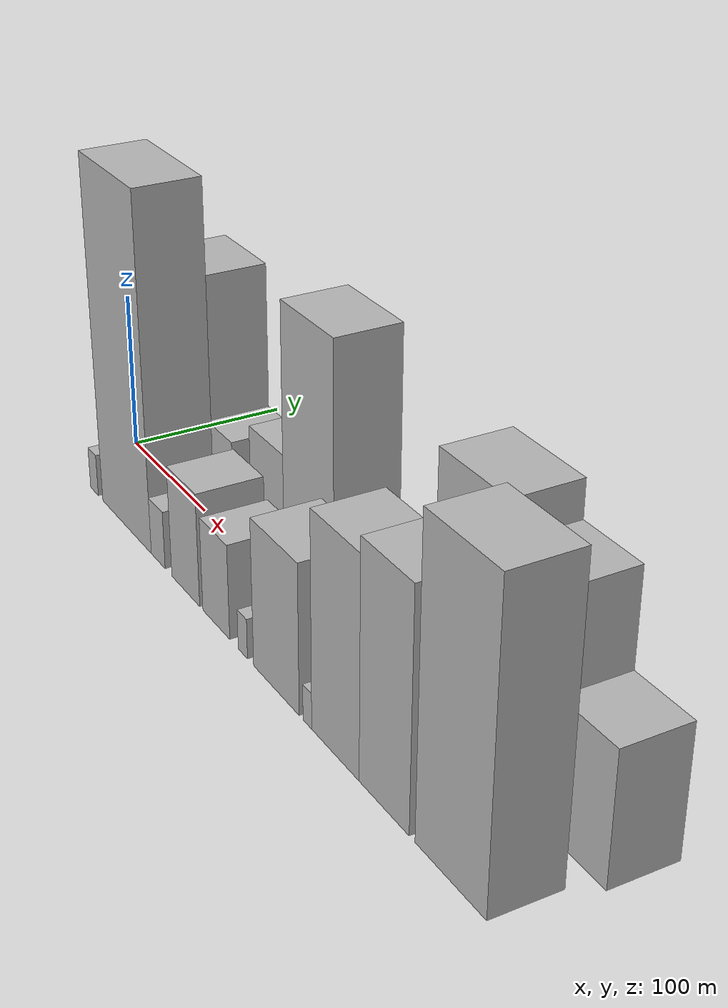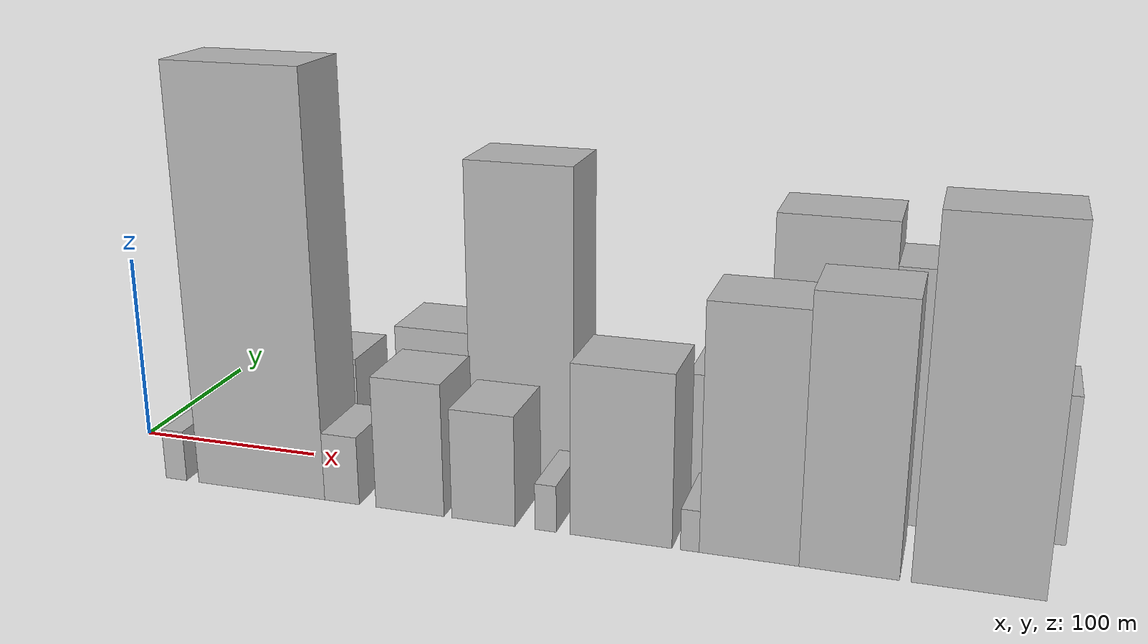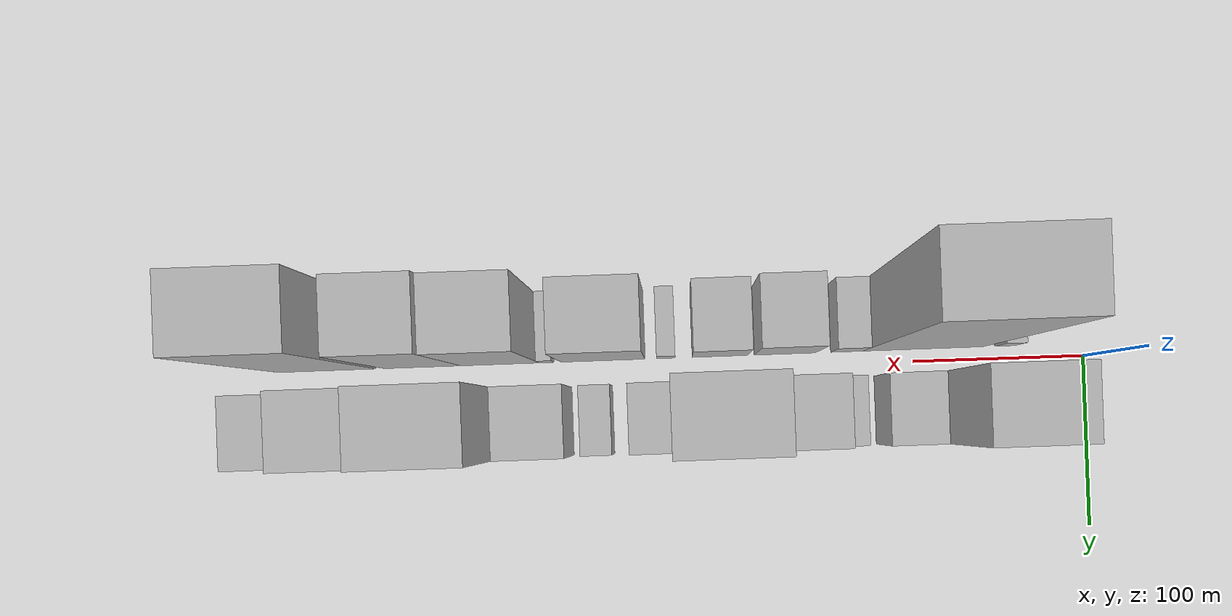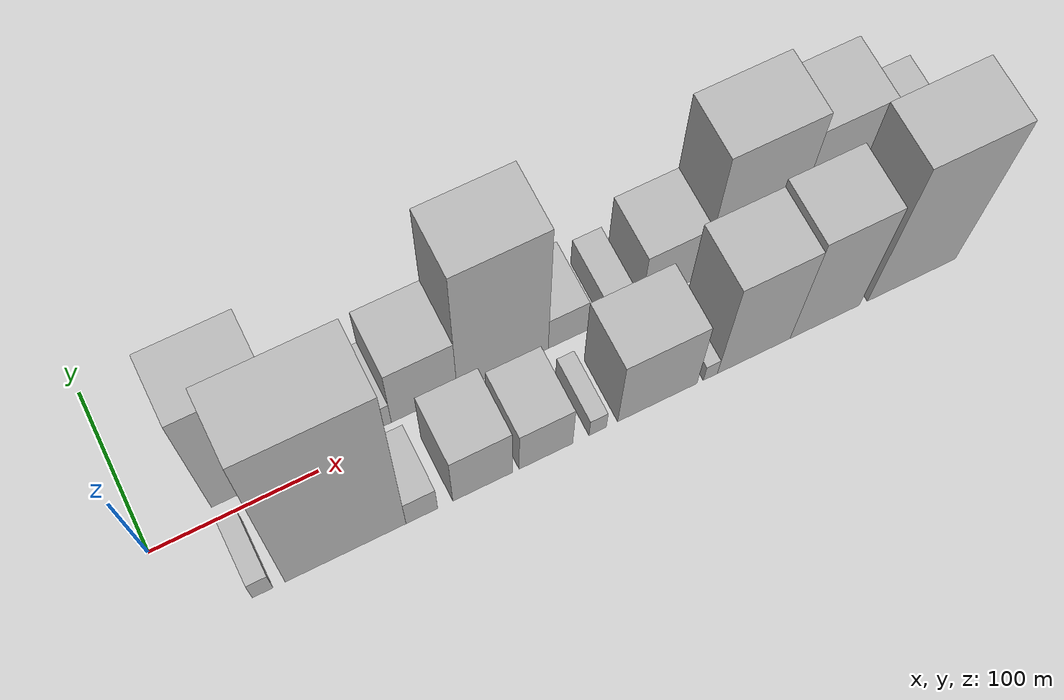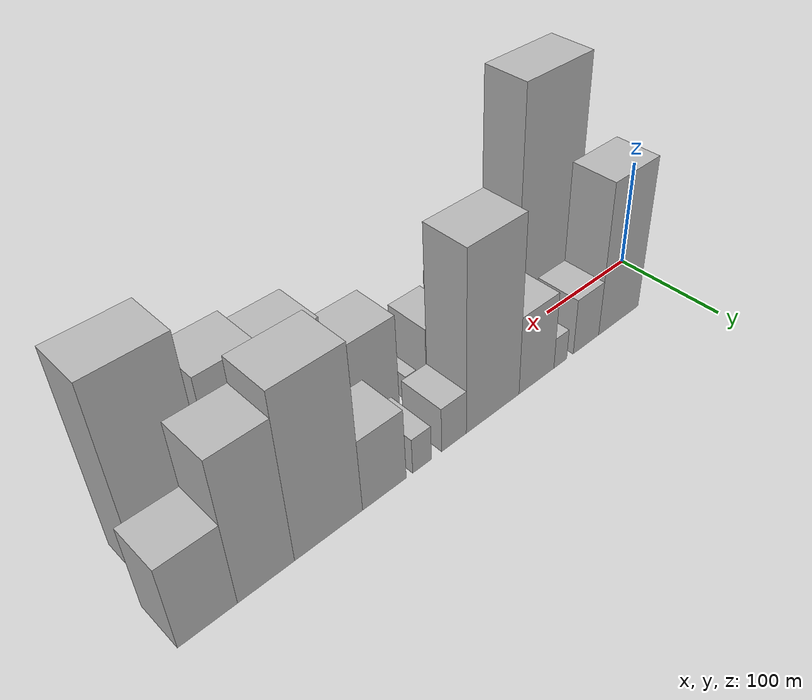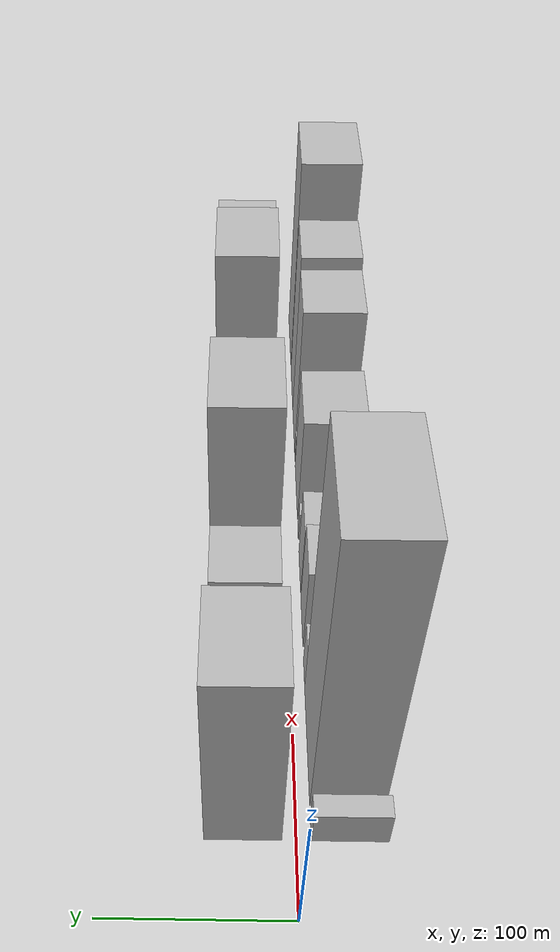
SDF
<sdf version="1.6">
 <world name="default">
  <scene>
   <sky><clouds><speed>12</speed></clouds></sky>
   <ambient>0.4 0.4 0.4 1</ambient>
   <background>0.7 0.7 0.7 1</background>
   <shadows>1</shadows>
  </scene>
  <gravity>0 0 -9.8066</gravity>
  <magnetic_field>6e-06 2.3e-05 -4.2e-05</magnetic_field>
  <physics default="0" name="default_physics" type="ode">
   <ode>
    <solver>
     <type>quick</type>
     <iters>10</iters>
     <sor>1.0</sor>
     <use_dynamic_moi_rescaling>0</use_dynamic_moi_rescaling>
    </solver>
    <constraints>
     <cfm>0</cfm>
     <erp>0.2</erp>
     <contact_max_correcting_vel>100</contact_max_correcting_vel>
     <contact_surface_layer>0.001</contact_surface_layer>
    </constraints>
   </ode>
   <max_step_size>0.004</max_step_size>
   <real_time_factor>1</real_time_factor>
   <real_time_update_rate>250</real_time_update_rate>
  </physics>
  <light name="sun" type="directional">
   <pose>0 0 10 0 0 0</pose>
   <diffuse>0.8 0.8 0.8 1</diffuse>
   <specular>0.2 0.2 0.2 1</specular>
   <attenuation>
    <range>1000</range>
    <constant>0.9</constant>
    <linear>0.01</linear>
    <quadratic>0.001</quadratic>
   </attenuation>
   <direction>-0.5 0.1 -0.9</direction>
  </light>
  <model name="building_1">
   <static>1</static>
   <pose>66.0236 27.5000 0 0.000000 0.000000 1.570796</pose>
   <link name="link">
    <pose>0 0 72.00 0 0 0</pose>
    <collision name="collision"><geometry><box><size>40.0000 52.0472 144.0000</size></box></geometry></collision>
    <visual name="visual">
     <cast_shadows>0</cast_shadows>
     <geometry><box><size>40.0000 52.0472 144.0000</size></box></geometry>
     <material>
      <script>
       <uri>model://HANNAS_wall/materials/scripts</uri>
       <uri>model://HANNAS_wall/materials/textures</uri>
       <name>vrc/HANNAS_wall</name>
      </script>
     </material>
    </visual>
   </link>
  </model>
  <model name="building_2">
   <static>1</static>
   <pose>107.8734 27.5000 0 0.000000 0.000000 1.570796</pose>
   <link name="link">
    <pose>0 0 27.00 0 0 0</pose>
    <collision name="collision"><geometry><box><size>40.0000 31.6524 54.0000</size></box></geometry></collision>
    <visual name="visual">
     <cast_shadows>0</cast_shadows>
     <geometry><box><size>40.0000 31.6524 54.0000</size></box></geometry>
     <material>
      <script>
       <uri>model://HANNAS_wall/materials/scripts</uri>
       <uri>model://HANNAS_wall/materials/textures</uri>
       <name>vrc/HANNAS_wall</name>
      </script>
     </material>
    </visual>
   </link>
  </model>
  <model name="building_3">
   <static>1</static>
   <pose>139.3408 27.5000 0 0.000000 0.000000 1.570796</pose>
   <link name="link">
    <pose>0 0 15.00 0 0 0</pose>
    <collision name="collision"><geometry><box><size>40.0000 15.2824 30.0000</size></box></geometry></collision>
    <visual name="visual">
     <cast_shadows>0</cast_shadows>
     <geometry><box><size>40.0000 15.2824 30.0000</size></box></geometry>
     <material>
      <script>
       <uri>model://HANNAS_wall/materials/scripts</uri>
       <uri>model://HANNAS_wall/materials/textures</uri>
       <name>vrc/HANNAS_wall</name>
      </script>
     </material>
    </visual>
   </link>
  </model>
  <model name="building_4">
   <static>1</static>
   <pose>167.0025 27.5000 0 0.000000 0.000000 1.570796</pose>
   <link name="link">
    <pose>0 0 37.50 0 0 0</pose>
    <collision name="collision"><geometry><box><size>40.0000 40.0409 75.0000</size></box></geometry></collision>
    <visual name="visual">
     <cast_shadows>0</cast_shadows>
     <geometry><box><size>40.0000 40.0409 75.0000</size></box></geometry>
     <material>
      <script>
       <uri>model://HANNAS_wall/materials/scripts</uri>
       <uri>model://HANNAS_wall/materials/textures</uri>
       <name>vrc/HANNAS_wall</name>
      </script>
     </material>
    </visual>
   </link>
  </model>
  <model name="building_5">
   <static>1</static>
   <pose>215.1390 27.5000 0 0.000000 0.000000 1.570796</pose>
   <link name="link">
    <pose>0 0 82.50 0 0 0</pose>
    <collision name="collision"><geometry><box><size>40.0000 56.2321 165.0000</size></box></geometry></collision>
    <visual name="visual">
     <cast_shadows>0</cast_shadows>
     <geometry><box><size>40.0000 56.2321 165.0000</size></box></geometry>
     <material>
      <script>
       <uri>model://HANNAS_wall/materials/scripts</uri>
       <uri>model://HANNAS_wall/materials/textures</uri>
       <name>vrc/HANNAS_wall</name>
      </script>
     </material>
    </visual>
   </link>
  </model>
  <model name="building_6">
   <static>1</static>
   <pose>255.5526 27.5000 0 0.000000 0.000000 1.570796</pose>
   <link name="link">
    <pose>0 0 21.00 0 0 0</pose>
    <collision name="collision"><geometry><box><size>40.0000 24.5952 42.0000</size></box></geometry></collision>
    <visual name="visual">
     <cast_shadows>0</cast_shadows>
     <geometry><box><size>40.0000 24.5952 42.0000</size></box></geometry>
     <material>
      <script>
       <uri>model://HANNAS_wall/materials/scripts</uri>
       <uri>model://HANNAS_wall/materials/textures</uri>
       <name>vrc/HANNAS_wall</name>
      </script>
     </material>
    </visual>
   </link>
  </model>
  <model name="building_7">
   <static>1</static>
   <pose>286.8297 27.5000 0 0.000000 0.000000 1.570796</pose>
   <link name="link">
    <pose>0 0 16.50 0 0 0</pose>
    <collision name="collision"><geometry><box><size>40.0000 17.9591 33.0000</size></box></geometry></collision>
    <visual name="visual">
     <cast_shadows>0</cast_shadows>
     <geometry><box><size>40.0000 17.9591 33.0000</size></box></geometry>
     <material>
      <script>
       <uri>model://HANNAS_wall/materials/scripts</uri>
       <uri>model://HANNAS_wall/materials/textures</uri>
       <name>vrc/HANNAS_wall</name>
      </script>
     </material>
    </visual>
   </link>
  </model>
  <model name="building_8">
   <static>1</static>
   <pose>321.4798 27.5000 0 0.000000 0.000000 1.570796</pose>
   <link name="link">
    <pose>0 0 33.00 0 0 0</pose>
    <collision name="collision"><geometry><box><size>40.0000 39.3410 66.0000</size></box></geometry></collision>
    <visual name="visual">
     <cast_shadows>0</cast_shadows>
     <geometry><box><size>40.0000 39.3410 66.0000</size></box></geometry>
     <material>
      <script>
       <uri>model://HANNAS_wall/materials/scripts</uri>
       <uri>model://HANNAS_wall/materials/textures</uri>
       <name>vrc/HANNAS_wall</name>
      </script>
     </material>
    </visual>
   </link>
  </model>
  <model name="building_9">
   <static>1</static>
   <pose>369.4416 27.5000 0 0.000000 0.000000 1.570796</pose>
   <link name="link">
    <pose>0 0 75.00 0 0 0</pose>
    <collision name="collision"><geometry><box><size>40.0000 56.5825 150.0000</size></box></geometry></collision>
    <visual name="visual">
     <cast_shadows>0</cast_shadows>
     <geometry><box><size>40.0000 56.5825 150.0000</size></box></geometry>
     <material>
      <script>
       <uri>model://HANNAS_wall/materials/scripts</uri>
       <uri>model://HANNAS_wall/materials/textures</uri>
       <name>vrc/HANNAS_wall</name>
      </script>
     </material>
    </visual>
   </link>
  </model>
  <model name="building_10">
   <static>1</static>
   <pose>419.4375 27.5000 0 0.000000 0.000000 1.570796</pose>
   <link name="link">
    <pose>0 0 64.50 0 0 0</pose>
    <collision name="collision"><geometry><box><size>40.0000 43.4092 129.0000</size></box></geometry></collision>
    <visual name="visual">
     <cast_shadows>0</cast_shadows>
     <geometry><box><size>40.0000 43.4092 129.0000</size></box></geometry>
     <material>
      <script>
       <uri>model://HANNAS_wall/materials/scripts</uri>
       <uri>model://HANNAS_wall/materials/textures</uri>
       <name>vrc/HANNAS_wall</name>
      </script>
     </material>
    </visual>
   </link>
  </model>
  <model name="building_11">
   <static>1</static>
   <pose>462.3519 27.5000 0 0.000000 0.000000 1.570796</pose>
   <link name="link">
    <pose>0 0 37.50 0 0 0</pose>
    <collision name="collision"><geometry><box><size>40.0000 42.4197 75.0000</size></box></geometry></collision>
    <visual name="visual">
     <cast_shadows>0</cast_shadows>
     <geometry><box><size>40.0000 42.4197 75.0000</size></box></geometry>
     <material>
      <script>
       <uri>model://HANNAS_wall/materials/scripts</uri>
       <uri>model://HANNAS_wall/materials/textures</uri>
       <name>vrc/HANNAS_wall</name>
      </script>
     </material>
    </visual>
   </link>
  </model>
  <model name="building_12">
   <static>1</static>
   <pose>45.9748 -27.5000 0 0.000000 0.000000 1.570796</pose>
   <link name="link">
    <pose>0 0 13.50 0 0 0</pose>
    <collision name="collision"><geometry><box><size>40.0000 11.9496 27.0000</size></box></geometry></collision>
    <visual name="visual">
     <cast_shadows>0</cast_shadows>
     <geometry><box><size>40.0000 11.9496 27.0000</size></box></geometry>
     <material>
      <script>
       <uri>model://HANNAS_wall/materials/scripts</uri>
       <uri>model://HANNAS_wall/materials/textures</uri>
       <name>vrc/HANNAS_wall</name>
      </script>
     </material>
    </visual>
   </link>
  </model>
  <model name="building_13">
   <static>1</static>
   <pose>94.4016 -27.5000 0 0.000000 0.000000 1.570796</pose>
   <link name="link">
    <pose>0 0 108.00 0 0 0</pose>
    <collision name="collision"><geometry><box><size>40.0000 70.9041 216.0000</size></box></geometry></collision>
    <visual name="visual">
     <cast_shadows>0</cast_shadows>
     <geometry><box><size>40.0000 70.9041 216.0000</size></box></geometry>
     <material>
      <script>
       <uri>model://HANNAS_wall/materials/scripts</uri>
       <uri>model://HANNAS_wall/materials/textures</uri>
       <name>vrc/HANNAS_wall</name>
      </script>
     </material>
    </visual>
   </link>
  </model>
  <model name="building_14">
   <static>1</static>
   <pose>139.2640 -27.5000 0 0.000000 0.000000 1.570796</pose>
   <link name="link">
    <pose>0 0 18.00 0 0 0</pose>
    <collision name="collision"><geometry><box><size>40.0000 18.8206 36.0000</size></box></geometry></collision>
    <visual name="visual">
     <cast_shadows>0</cast_shadows>
     <geometry><box><size>40.0000 18.8206 36.0000</size></box></geometry>
     <material>
      <script>
       <uri>model://HANNAS_wall/materials/scripts</uri>
       <uri>model://HANNAS_wall/materials/textures</uri>
       <name>vrc/HANNAS_wall</name>
      </script>
     </material>
    </visual>
   </link>
  </model>
  <model name="building_15">
   <static>1</static>
   <pose>175.6849 -27.5000 0 0.000000 0.000000 1.570796</pose>
   <link name="link">
    <pose>0 0 34.50 0 0 0</pose>
    <collision name="collision"><geometry><box><size>40.0000 36.0212 69.0000</size></box></geometry></collision>
    <visual name="visual">
     <cast_shadows>0</cast_shadows>
     <geometry><box><size>40.0000 36.0212 69.0000</size></box></geometry>
     <material>
      <script>
       <uri>model://HANNAS_wall/materials/scripts</uri>
       <uri>model://HANNAS_wall/materials/textures</uri>
       <name>vrc/HANNAS_wall</name>
      </script>
     </material>
    </visual>
   </link>
  </model>
  <model name="building_16">
   <static>1</static>
   <pose>214.0021 -27.5000 0 0.000000 0.000000 1.570796</pose>
   <link name="link">
    <pose>0 0 28.50 0 0 0</pose>
    <collision name="collision"><geometry><box><size>40.0000 32.6134 57.0000</size></box></geometry></collision>
    <visual name="visual">
     <cast_shadows>0</cast_shadows>
     <geometry><box><size>40.0000 32.6134 57.0000</size></box></geometry>
     <material>
      <script>
       <uri>model://HANNAS_wall/materials/scripts</uri>
       <uri>model://HANNAS_wall/materials/textures</uri>
       <name>vrc/HANNAS_wall</name>
      </script>
     </material>
    </visual>
   </link>
  </model>
  <model name="building_17">
   <static>1</static>
   <pose>245.6522 -27.5000 0 0.000000 0.000000 1.570796</pose>
   <link name="link">
    <pose>0 0 12.00 0 0 0</pose>
    <collision name="collision"><geometry><box><size>40.0000 10.6868 24.0000</size></box></geometry></collision>
    <visual name="visual">
     <cast_shadows>0</cast_shadows>
     <geometry><box><size>40.0000 10.6868 24.0000</size></box></geometry>
     <material>
      <script>
       <uri>model://HANNAS_wall/materials/scripts</uri>
       <uri>model://HANNAS_wall/materials/textures</uri>
       <name>vrc/HANNAS_wall</name>
      </script>
     </material>
    </visual>
   </link>
  </model>
  <model name="building_18">
   <static>1</static>
   <pose>282.7163 -27.5000 0 0.000000 0.000000 1.570796</pose>
   <link name="link">
    <pose>0 0 43.50 0 0 0</pose>
    <collision name="collision"><geometry><box><size>40.0000 49.4414 87.0000</size></box></geometry></collision>
    <visual name="visual">
     <cast_shadows>0</cast_shadows>
     <geometry><box><size>40.0000 49.4414 87.0000</size></box></geometry>
     <material>
      <script>
       <uri>model://HANNAS_wall/materials/scripts</uri>
       <uri>model://HANNAS_wall/materials/textures</uri>
       <name>vrc/HANNAS_wall</name>
      </script>
     </material>
    </visual>
   </link>
  </model>
  <model name="building_19">
   <static>1</static>
   <pose>315.8772 -27.5000 0 0.000000 0.000000 1.570796</pose>
   <link name="link">
    <pose>0 0 10.50 0 0 0</pose>
    <collision name="collision"><geometry><box><size>40.0000 8.8803 21.0000</size></box></geometry></collision>
    <visual name="visual">
     <cast_shadows>0</cast_shadows>
     <geometry><box><size>40.0000 8.8803 21.0000</size></box></geometry>
     <material>
      <script>
       <uri>model://HANNAS_wall/materials/scripts</uri>
       <uri>model://HANNAS_wall/materials/textures</uri>
       <name>vrc/HANNAS_wall</name>
      </script>
     </material>
    </visual>
   </link>
  </model>
  <model name="building_20">
   <static>1</static>
   <pose>343.4144 -27.5000 0 0.000000 0.000000 1.570796</pose>
   <link name="link">
    <pose>0 0 61.50 0 0 0</pose>
    <collision name="collision"><geometry><box><size>40.0000 46.1942 123.0000</size></box></geometry></collision>
    <visual name="visual">
     <cast_shadows>0</cast_shadows>
     <geometry><box><size>40.0000 46.1942 123.0000</size></box></geometry>
     <material>
      <script>
       <uri>model://HANNAS_wall/materials/scripts</uri>
       <uri>model://HANNAS_wall/materials/textures</uri>
       <name>vrc/HANNAS_wall</name>
      </script>
     </material>
    </visual>
   </link>
  </model>
  <model name="building_21">
   <static>1</static>
   <pose>388.9727 -27.5000 0 0.000000 0.000000 1.570796</pose>
   <link name="link">
    <pose>0 0 66.00 0 0 0</pose>
    <collision name="collision"><geometry><box><size>40.0000 44.9225 132.0000</size></box></geometry></collision>
    <visual name="visual">
     <cast_shadows>0</cast_shadows>
     <geometry><box><size>40.0000 44.9225 132.0000</size></box></geometry>
     <material>
      <script>
       <uri>model://HANNAS_wall/materials/scripts</uri>
       <uri>model://HANNAS_wall/materials/textures</uri>
       <name>vrc/HANNAS_wall</name>
      </script>
     </material>
    </visual>
   </link>
  </model>
  <model name="building_22">
   <static>1</static>
   <pose>445.3066 -27.5000 0 0.000000 0.000000 1.570796</pose>
   <link name="link">
    <pose>0 0 85.50 0 0 0</pose>
    <collision name="collision"><geometry><box><size>40.0000 57.7452 171.0000</size></box></geometry></collision>
    <visual name="visual">
     <cast_shadows>0</cast_shadows>
     <geometry><box><size>40.0000 57.7452 171.0000</size></box></geometry>
     <material>
      <script>
       <uri>model://HANNAS_wall/materials/scripts</uri>
       <uri>model://HANNAS_wall/materials/textures</uri>
       <name>vrc/HANNAS_wall</name>
      </script>
     </material>
    </visual>
   </link>
  </model>
 </world>
</sdf>
